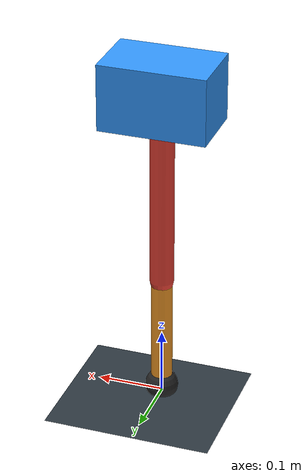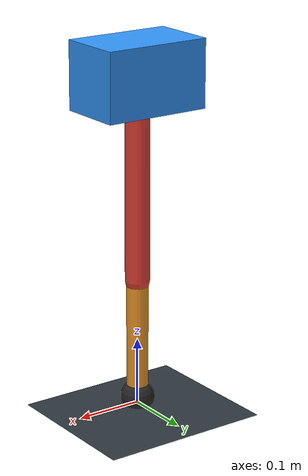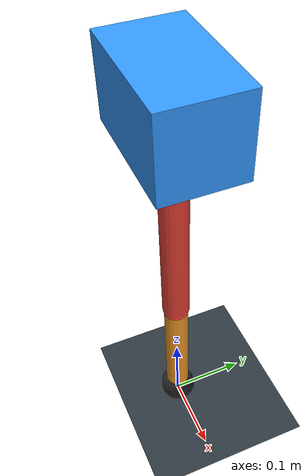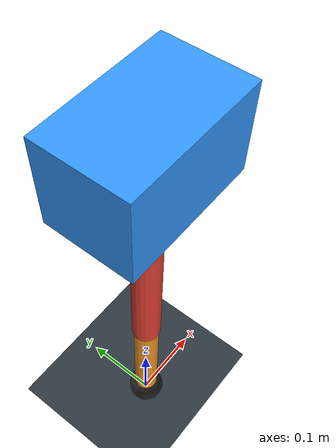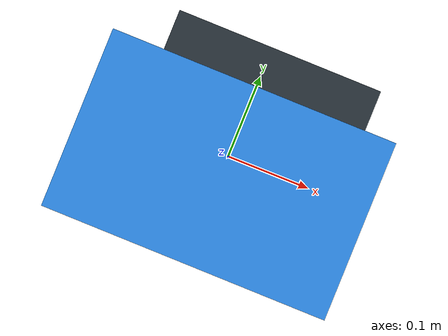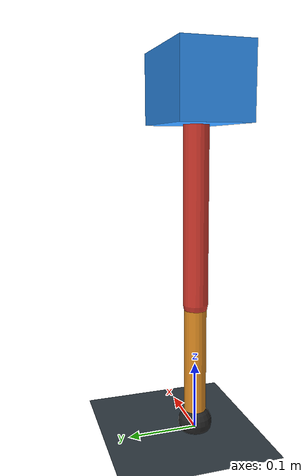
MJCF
<mujoco model="single_axis_two_bar">
  <compiler angle="radian" inertiafromgeom="true"/>
  <option timestep="0.001" integrator="implicitfast" gravity="0 0 -9.81"/>
  <default>
    <joint damping="0.08"/>
    <geom friction="1.2 0.01 0.0001" condim="3"/>
  </default>
  <worldbody>
    <geom name="floor" type="plane" size="5 5 0.1" rgba="0.18 0.22 0.25 1"/>
    <body name="carriage" pos="0 0 0.4943887282957312">
      <joint name="pole_slide" type="slide" axis="0 0 1"/>
      <geom name="payload" type="box" size="0.08 0.05 0.05" mass="2.763657199000579" rgba="0.2 0.6 1 1"/>
      <body name="thigh" pos="0 0 0">
        <joint name="hip" type="hinge" axis="0 1 0"/>
        <geom name="thigh_link" type="capsule" fromto="0 0 0 0 0 -0.30331502324976944" size="0.018" mass="0.2161159620198777" rgba="0.9 0.25 0.2 1"/>
        <body name="shank" pos="0 0 -0.30331502324976944">
          <joint name="knee" type="hinge" axis="0 1 0"/>
          <geom name="shank_link" type="capsule" fromto="0 0 0 0 0 -0.18059088220974728" size="0.016" mass="0.12867338987241417" rgba="0.95 0.6 0.15 1"/>
          <geom name="foot" type="sphere" pos="0 0 -0.18059088220974728" size="0.025" mass="0.03" rgba="0.15 0.15 0.15 1"/>
          <site name="toe" pos="0 0 -0.18059088220974728" size="0.008"/>
        </body>
      </body>
    </body>
  </worldbody>
  <actuator>
    <motor name="hip_motor" joint="hip" ctrlrange="-34.69325570761789 34.69325570761789"/>
    <motor name="knee_motor" joint="knee" ctrlrange="-70.66884209057784 70.66884209057784"/>
  </actuator>
</mujoco>
